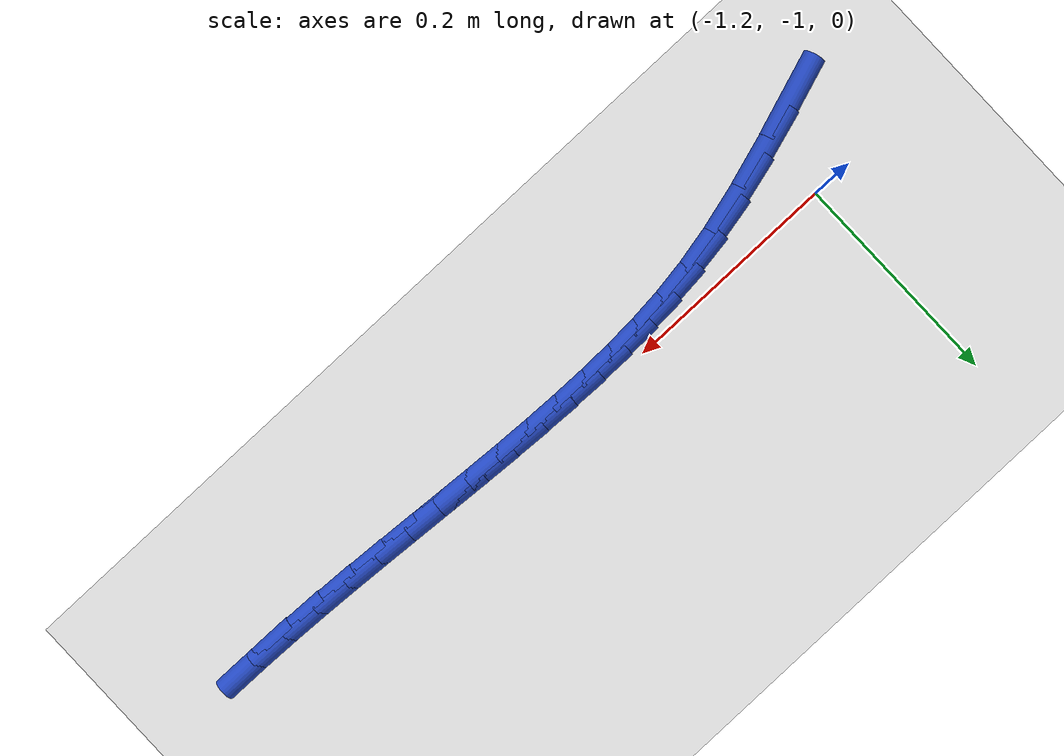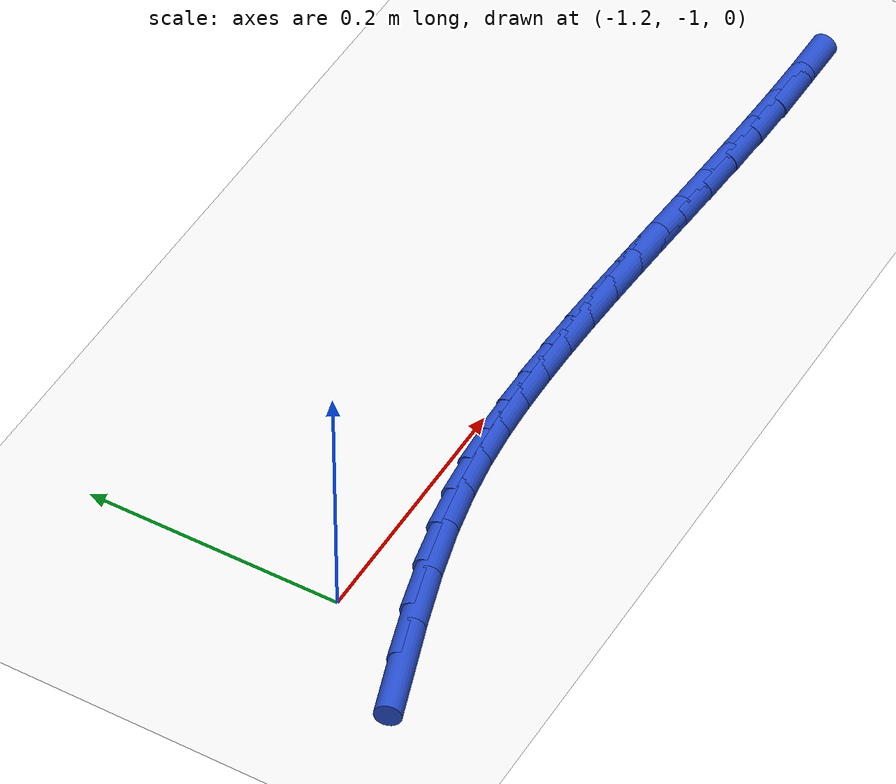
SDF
<sdf version="1.6">
 <world name="default">
  <model name="ground_plane">
   <static>1</static>
   <link name="link">
    <collision name="collision">
     <geometry><plane><normal>0 0 1</normal><size>100 100</size></plane></geometry>
     <surface><friction><ode><mu>100</mu><mu2>50</mu2></ode></friction></surface>
    </collision>
    <visual name="visual">
     <cast_shadows>0</cast_shadows>
     <geometry><plane><normal>0 0 1</normal><size>100 100</size></plane></geometry>
     <material>
      <script><uri>file://media/materials/scripts/gazebo.material</uri><name>Gazebo/WhiteGlow</name></script>
     </material>
    </visual>
   </link>
  </model>
  <model name="line">
   <link name="link_182">
    <pose>-1.2386020974789267 -1.0722453670197785 0.01 0 1.57 0.3292114389593177</pose>
    <collision name="collision">
     <geometry><cylinder><radius>0.01</radius><length>0.08</length></cylinder></geometry>
    </collision>
    <visual name="visual">
     <material>
      <script><name>Gazebo/Blue</name><uri>file://media/materials/scripts/gazebo.material</uri></script>
     </material>
     <geometry><cylinder><radius>0.01</radius><length>0.08</length></cylinder></geometry>
    </visual>
   </link>
   <link name="link_183">
    <pose>-1.1931045087377865 -1.0567013875538207 0.01 0 1.57 0.3023641365483639</pose>
    <collision name="collision">
     <geometry><cylinder><radius>0.01</radius><length>0.08</length></cylinder></geometry>
    </collision>
    <visual name="visual">
     <material>
      <script><name>Gazebo/Blue</name><uri>file://media/materials/scripts/gazebo.material</uri></script>
     </material>
     <geometry><cylinder><radius>0.01</radius><length>0.08</length></cylinder></geometry>
    </visual>
   </link>
   <link name="link_184">
    <pose>-1.1505319403131726 -1.0434217897862728 0.01 0 1.57 0.26132343508822403</pose>
    <collision name="collision">
     <geometry><cylinder><radius>0.01</radius><length>0.08</length></cylinder></geometry>
    </collision>
    <visual name="visual">
     <material>
      <script><name>Gazebo/Blue</name><uri>file://media/materials/scripts/gazebo.material</uri></script>
     </material>
     <geometry><cylinder><radius>0.01</radius><length>0.08</length></cylinder></geometry>
    </visual>
   </link>
   <link name="link_185">
    <pose>-1.1118241345402764 -1.0330698077753409 0.01 0 1.57 0.20808583174965994</pose>
    <collision name="collision">
     <geometry><cylinder><radius>0.01</radius><length>0.08</length></cylinder></geometry>
    </collision>
    <visual name="visual">
     <material>
      <script><name>Gazebo/Blue</name><uri>file://media/materials/scripts/gazebo.material</uri></script>
     </material>
     <geometry><cylinder><radius>0.01</radius><length>0.08</length></cylinder></geometry>
    </visual>
   </link>
   <link name="link_186">
    <pose>-1.076847545124734 -1.0256847761962842 0.01 0 1.57 0.15110450742342263</pose>
    <collision name="collision">
     <geometry><cylinder><radius>0.01</radius><length>0.08</length></cylinder></geometry>
    </collision>
    <visual name="visual">
     <material>
      <script><name>Gazebo/Blue</name><uri>file://media/materials/scripts/gazebo.material</uri></script>
     </material>
     <geometry><cylinder><radius>0.01</radius><length>0.08</length></cylinder></geometry>
    </visual>
   </link>
   <link name="link_187">
    <pose>-1.0445382303966588 -1.0207651937509827 0.01 0 1.57 0.09644211403176871</pose>
    <collision name="collision">
     <geometry><cylinder><radius>0.01</radius><length>0.08</length></cylinder></geometry>
    </collision>
    <visual name="visual">
     <material>
      <script><name>Gazebo/Blue</name><uri>file://media/materials/scripts/gazebo.material</uri></script>
     </material>
     <geometry><cylinder><radius>0.01</radius><length>0.08</length></cylinder></geometry>
    </visual>
   </link>
   <link name="link_188">
    <pose>-1.0138014354069773 -1.0177916474767896 0.01 0 1.57 0.05107799268068533</pose>
    <collision name="collision">
     <geometry><cylinder><radius>0.01</radius><length>0.08</length></cylinder></geometry>
    </collision>
    <visual name="visual">
     <material>
      <script><name>Gazebo/Blue</name><uri>file://media/materials/scripts/gazebo.material</uri></script>
     </material>
     <geometry><cylinder><radius>0.01</radius><length>0.08</length></cylinder></geometry>
    </visual>
   </link>
   <link name="link_189">
    <pose>-0.9835424292286431 -1.0162447326663337 0.01 0 1.57 0.018426104516466504</pose>
    <collision name="collision">
     <geometry><cylinder><radius>0.01</radius><length>0.08</length></cylinder></geometry>
    </collision>
    <visual name="visual">
     <material>
      <script><name>Gazebo/Blue</name><uri>file://media/materials/scripts/gazebo.material</uri></script>
     </material>
     <geometry><cylinder><radius>0.01</radius><length>0.08</length></cylinder></geometry>
    </visual>
   </link>
   <link name="link_190">
    <pose>-0.9528838687335534 -1.0156797508837578 0.01 0 1.57 -0.007350593972656638</pose>
    <collision name="collision">
     <geometry><cylinder><radius>0.01</radius><length>0.08</length></cylinder></geometry>
    </collision>
    <visual name="visual">
     <material>
      <script><name>Gazebo/Blue</name><uri>file://media/materials/scripts/gazebo.material</uri></script>
     </material>
     <geometry><cylinder><radius>0.01</radius><length>0.08</length></cylinder></geometry>
    </visual>
   </link>
   <link name="link_191">
    <pose>-0.9216962517527311 -1.0159090025220896 0.01 0 1.57 -0.028112956085876793</pose>
    <collision name="collision">
     <geometry><cylinder><radius>0.01</radius><length>0.08</length></cylinder></geometry>
    </collision>
    <visual name="visual">
     <material>
      <script><name>Gazebo/Blue</name><uri>file://media/materials/scripts/gazebo.material</uri></script>
     </material>
     <geometry><cylinder><radius>0.01</radius><length>0.08</length></cylinder></geometry>
    </visual>
   </link>
   <link name="link_192">
    <pose>-0.8900107664797188 -1.016800009922923 0.01 0 1.57 -0.04414516885860992</pose>
    <collision name="collision">
     <geometry><cylinder><radius>0.01</radius><length>0.08</length></cylinder></geometry>
    </collision>
    <visual name="visual">
     <material>
      <script><name>Gazebo/Blue</name><uri>file://media/materials/scripts/gazebo.material</uri></script>
     </material>
     <geometry><cylinder><radius>0.01</radius><length>0.08</length></cylinder></geometry>
    </visual>
   </link>
   <link name="link_193">
    <pose>-0.8578586011080619 -1.0182202954278519 0.01 0 1.57 -0.055702262669961145</pose>
    <collision name="collision">
     <geometry><cylinder><radius>0.01</radius><length>0.08</length></cylinder></geometry>
    </collision>
    <visual name="visual">
     <material>
      <script><name>Gazebo/Blue</name><uri>file://media/materials/scripts/gazebo.material</uri></script>
     </material>
     <geometry><cylinder><radius>0.01</radius><length>0.08</length></cylinder></geometry>
    </visual>
   </link>
   <link name="link_194">
    <pose>-0.8252709438313032 -1.0200373813784702 0.01 0 1.57 -0.06300485990758768</pose>
    <collision name="collision">
     <geometry><cylinder><radius>0.01</radius><length>0.08</length></cylinder></geometry>
    </collision>
    <visual name="visual">
     <material>
      <script><name>Gazebo/Blue</name><uri>file://media/materials/scripts/gazebo.material</uri></script>
     </material>
     <geometry><cylinder><radius>0.01</radius><length>0.08</length></cylinder></geometry>
    </visual>
   </link>
   <link name="link_195">
    <pose>-0.7922789828429861 -1.022118790116372 0.01 0 1.57 -0.06623740586029926</pose>
    <collision name="collision">
     <geometry><cylinder><radius>0.01</radius><length>0.08</length></cylinder></geometry>
    </collision>
    <visual name="visual">
     <material>
      <script><name>Gazebo/Blue</name><uri>file://media/materials/scripts/gazebo.material</uri></script>
     </material>
     <geometry><cylinder><radius>0.01</radius><length>0.08</length></cylinder></geometry>
    </visual>
   </link>
   <link name="link_196">
    <pose>-0.7589139063366548 -1.024332043983151 0.01 0 1.57 -0.06554873571268752</pose>
    <collision name="collision">
     <geometry><cylinder><radius>0.01</radius><length>0.08</length></cylinder></geometry>
    </collision>
    <visual name="visual">
     <material>
      <script><name>Gazebo/Blue</name><uri>file://media/materials/scripts/gazebo.material</uri></script>
     </material>
     <geometry><cylinder><radius>0.01</radius><length>0.08</length></cylinder></geometry>
    </visual>
   </link>
   <link name="link_197">
    <pose>-0.7252069025058523 -1.0265446653204007 0.01 0 1.57 -0.06105421618914371</pose>
    <collision name="collision">
     <geometry><cylinder><radius>0.01</radius><length>0.08</length></cylinder></geometry>
    </collision>
    <visual name="visual">
     <material>
      <script><name>Gazebo/Blue</name><uri>file://media/materials/scripts/gazebo.material</uri></script>
     </material>
     <geometry><cylinder><radius>0.01</radius><length>0.08</length></cylinder></geometry>
    </visual>
   </link>
   <link name="link_198">
    <pose>-0.6911891595441224 -1.0286241764697157 0.01 0 1.57 -0.052839004150654734</pose>
    <collision name="collision">
     <geometry><cylinder><radius>0.01</radius><length>0.08</length></cylinder></geometry>
    </collision>
    <visual name="visual">
     <material>
      <script><name>Gazebo/Blue</name><uri>file://media/materials/scripts/gazebo.material</uri></script>
     </material>
     <geometry><cylinder><radius>0.01</radius><length>0.08</length></cylinder></geometry>
    </visual>
   </link>
   <link name="link_199">
    <pose>-0.6568918656450091 -1.03043809977269 0.01 0 1.57 -0.04096219198950783</pose>
    <collision name="collision">
     <geometry><cylinder><radius>0.01</radius><length>0.08</length></cylinder></geometry>
    </collision>
    <visual name="visual">
     <material>
      <script><name>Gazebo/Blue</name><uri>file://media/materials/scripts/gazebo.material</uri></script>
     </material>
     <geometry><cylinder><radius>0.01</radius><length>0.08</length></cylinder></geometry>
    </visual>
   </link>
   <link name="link_200">
    <pose>-0.6223462090020547 -1.0318539575709174 0.01 0 1.57 -0.025461772800907344</pose>
    <collision name="collision">
     <geometry><cylinder><radius>0.01</radius><length>0.08</length></cylinder></geometry>
    </collision>
    <visual name="visual">
     <material>
      <script><name>Gazebo/Blue</name><uri>file://media/materials/scripts/gazebo.material</uri></script>
     </material>
     <geometry><cylinder><radius>0.01</radius><length>0.08</length></cylinder></geometry>
    </visual>
   </link>
   <link name="link_201">
    <pose>-0.5875833778088048 -1.0327392722059912 0.01 0 1.57 -0.0063604499547597415</pose>
    <collision name="collision">
     <geometry><cylinder><radius>0.01</radius><length>0.08</length></cylinder></geometry>
    </collision>
    <visual name="visual">
     <material>
      <script><name>Gazebo/Blue</name><uri>file://media/materials/scripts/gazebo.material</uri></script>
     </material>
     <geometry><cylinder><radius>0.01</radius><length>0.08</length></cylinder></geometry>
    </visual>
   </link>
  </model>
 </world>
</sdf>
